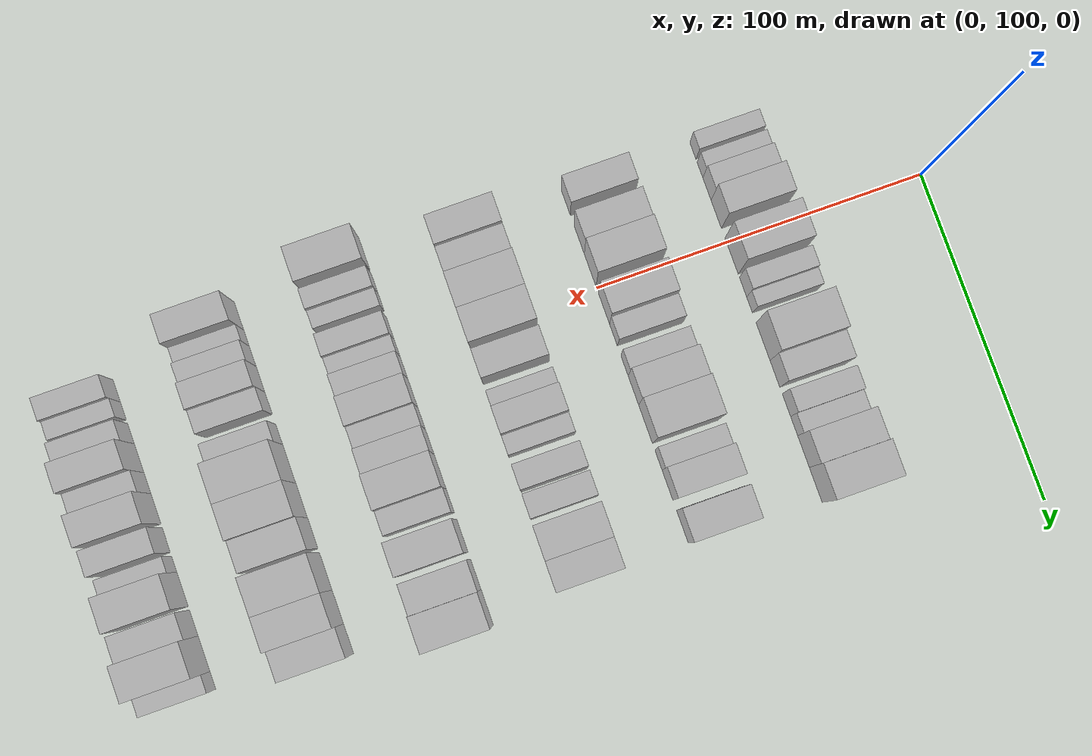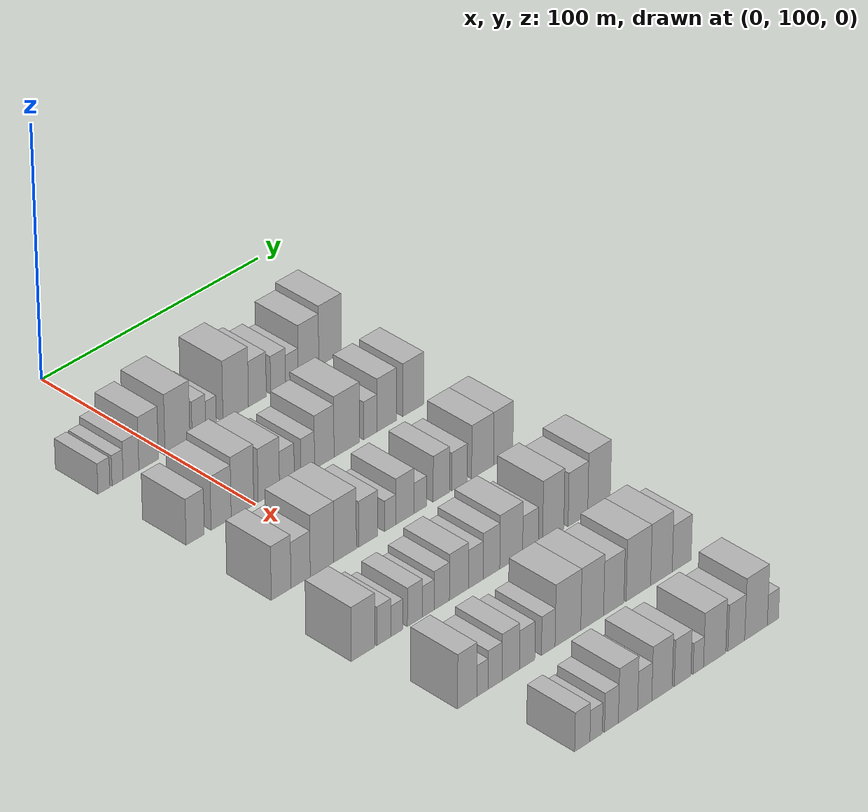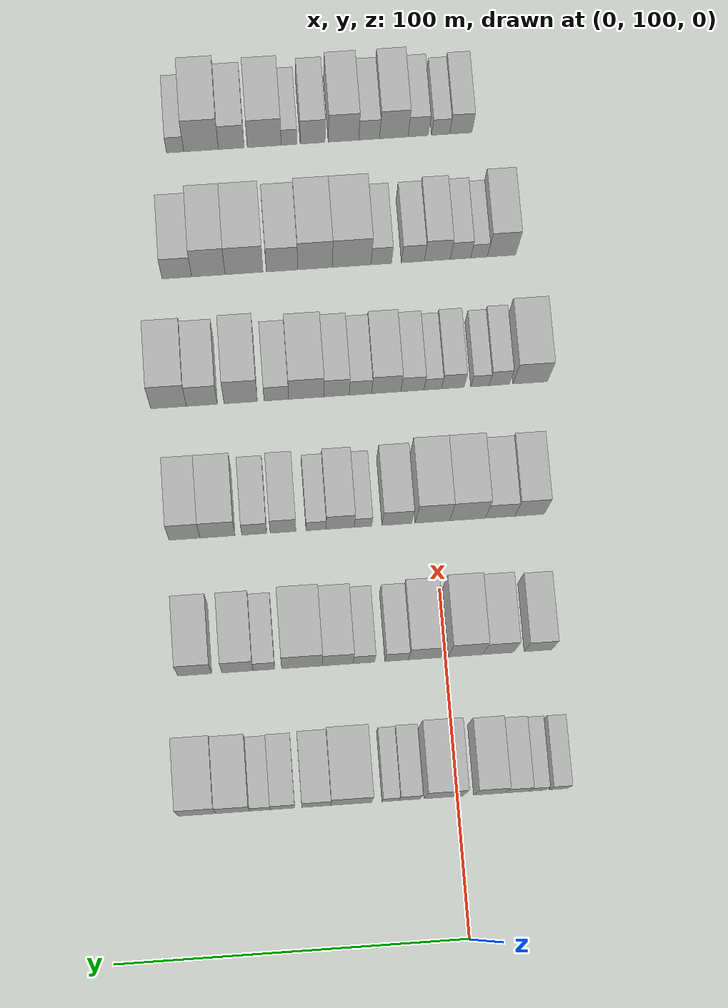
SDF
<sdf version="1.6">
 <world name="default">
  <model name="building_75">
   <static>1</static>
   <pose>50.0000 71.1874 0 0.000000 0.000000 0.000000</pose>
   <link name="link">
    <pose>0 0 6.00 0 0 0</pose>
    <collision name="collision"><geometry><box><size>20.0000 5.2787 12.0000</size></box></geometry></collision>
    <visual name="visual">
     <cast_shadows>0</cast_shadows>
     <geometry><box><size>20.0000 5.2787 12.0000</size></box></geometry>
     <material>
      <script>
       <uri>model://HANNAS_wall/materials/scripts</uri>
       <uri>model://HANNAS_wall/materials/textures</uri>
       <name>vrc/HANNAS_wall</name>
      </script>
     </material>
    </visual>
   </link>
  </model>
  <model name="building_76">
   <static>1</static>
   <pose>50.0000 77.2538 0 0.000000 0.000000 0.000000</pose>
   <link name="link">
    <pose>0 0 6.00 0 0 0</pose>
    <collision name="collision"><geometry><box><size>20.0000 4.8540 12.0000</size></box></geometry></collision>
    <visual name="visual">
     <cast_shadows>0</cast_shadows>
     <geometry><box><size>20.0000 4.8540 12.0000</size></box></geometry>
     <material>
      <script>
       <uri>model://HANNAS_wall/materials/scripts</uri>
       <uri>model://HANNAS_wall/materials/textures</uri>
       <name>vrc/HANNAS_wall</name>
      </script>
     </material>
    </visual>
   </link>
  </model>
  <model name="building_77">
   <static>1</static>
   <pose>50.0000 83.2019 0 0.000000 0.000000 0.000000</pose>
   <link name="link">
    <pose>0 0 7.50 0 0 0</pose>
    <collision name="collision"><geometry><box><size>20.0000 7.0421 15.0000</size></box></geometry></collision>
    <visual name="visual">
     <cast_shadows>0</cast_shadows>
     <geometry><box><size>20.0000 7.0421 15.0000</size></box></geometry>
     <material>
      <script>
       <uri>model://HANNAS_wall/materials/scripts</uri>
       <uri>model://HANNAS_wall/materials/textures</uri>
       <name>vrc/HANNAS_wall</name>
      </script>
     </material>
    </visual>
   </link>
  </model>
  <model name="building_78">
   <static>1</static>
   <pose>50.0000 91.0923 0 0.000000 0.000000 0.000000</pose>
   <link name="link">
    <pose>0 0 10.50 0 0 0</pose>
    <collision name="collision"><geometry><box><size>20.0000 8.7388 21.0000</size></box></geometry></collision>
    <visual name="visual">
     <cast_shadows>0</cast_shadows>
     <geometry><box><size>20.0000 8.7388 21.0000</size></box></geometry>
     <material>
      <script>
       <uri>model://HANNAS_wall/materials/scripts</uri>
       <uri>model://HANNAS_wall/materials/textures</uri>
       <name>vrc/HANNAS_wall</name>
      </script>
     </material>
    </visual>
   </link>
  </model>
  <model name="building_79">
   <static>1</static>
   <pose>50.0000 104.0641 0 0.000000 0.000000 0.000000</pose>
   <link name="link">
    <pose>0 0 12.00 0 0 0</pose>
    <collision name="collision"><geometry><box><size>20.0000 11.2049 24.0000</size></box></geometry></collision>
    <visual name="visual">
     <cast_shadows>0</cast_shadows>
     <geometry><box><size>20.0000 11.2049 24.0000</size></box></geometry>
     <material>
      <script>
       <uri>model://HANNAS_wall/materials/scripts</uri>
       <uri>model://HANNAS_wall/materials/textures</uri>
       <name>vrc/HANNAS_wall</name>
      </script>
     </material>
    </visual>
   </link>
  </model>
  <model name="building_80">
   <static>1</static>
   <pose>50.0000 113.7381 0 0.000000 0.000000 0.000000</pose>
   <link name="link">
    <pose>0 0 7.50 0 0 0</pose>
    <collision name="collision"><geometry><box><size>20.0000 6.1432 15.0000</size></box></geometry></collision>
    <visual name="visual">
     <cast_shadows>0</cast_shadows>
     <geometry><box><size>20.0000 6.1432 15.0000</size></box></geometry>
     <material>
      <script>
       <uri>model://HANNAS_wall/materials/scripts</uri>
       <uri>model://HANNAS_wall/materials/textures</uri>
       <name>vrc/HANNAS_wall</name>
      </script>
     </material>
    </visual>
   </link>
  </model>
  <model name="building_81">
   <static>1</static>
   <pose>50.0000 119.2396 0 0.000000 0.000000 0.000000</pose>
   <link name="link">
    <pose>0 0 6.00 0 0 0</pose>
    <collision name="collision"><geometry><box><size>20.0000 4.8598 12.0000</size></box></geometry></collision>
    <visual name="visual">
     <cast_shadows>0</cast_shadows>
     <geometry><box><size>20.0000 4.8598 12.0000</size></box></geometry>
     <material>
      <script>
       <uri>model://HANNAS_wall/materials/scripts</uri>
       <uri>model://HANNAS_wall/materials/textures</uri>
       <name>vrc/HANNAS_wall</name>
      </script>
     </material>
    </visual>
   </link>
  </model>
  <model name="building_82">
   <static>1</static>
   <pose>50.0000 130.5034 0 0.000000 0.000000 0.000000</pose>
   <link name="link">
    <pose>0 0 12.00 0 0 0</pose>
    <collision name="collision"><geometry><box><size>20.0000 11.6679 24.0000</size></box></geometry></collision>
    <visual name="visual">
     <cast_shadows>0</cast_shadows>
     <geometry><box><size>20.0000 11.6679 24.0000</size></box></geometry>
     <material>
      <script>
       <uri>model://HANNAS_wall/materials/scripts</uri>
       <uri>model://HANNAS_wall/materials/textures</uri>
       <name>vrc/HANNAS_wall</name>
      </script>
     </material>
    </visual>
   </link>
  </model>
  <model name="building_83">
   <static>1</static>
   <pose>50.0000 140.4385 0 0.000000 0.000000 0.000000</pose>
   <link name="link">
    <pose>0 0 9.00 0 0 0</pose>
    <collision name="collision"><geometry><box><size>20.0000 8.2021 18.0000</size></box></geometry></collision>
    <visual name="visual">
     <cast_shadows>0</cast_shadows>
     <geometry><box><size>20.0000 8.2021 18.0000</size></box></geometry>
     <material>
      <script>
       <uri>model://HANNAS_wall/materials/scripts</uri>
       <uri>model://HANNAS_wall/materials/textures</uri>
       <name>vrc/HANNAS_wall</name>
      </script>
     </material>
    </visual>
   </link>
  </model>
  <model name="building_84">
   <static>1</static>
   <pose>50.0000 150.0094 0 0.000000 0.000000 0.000000</pose>
   <link name="link">
    <pose>0 0 7.50 0 0 0</pose>
    <collision name="collision"><geometry><box><size>20.0000 6.9398 15.0000</size></box></geometry></collision>
    <visual name="visual">
     <cast_shadows>0</cast_shadows>
     <geometry><box><size>20.0000 6.9398 15.0000</size></box></geometry>
     <material>
      <script>
       <uri>model://HANNAS_wall/materials/scripts</uri>
       <uri>model://HANNAS_wall/materials/textures</uri>
       <name>vrc/HANNAS_wall</name>
      </script>
     </material>
    </visual>
   </link>
  </model>
  <model name="building_85">
   <static>1</static>
   <pose>50.0000 156.3979 0 0.000000 0.000000 0.000000</pose>
   <link name="link">
    <pose>0 0 6.00 0 0 0</pose>
    <collision name="collision"><geometry><box><size>20.0000 5.8374 12.0000</size></box></geometry></collision>
    <visual name="visual">
     <cast_shadows>0</cast_shadows>
     <geometry><box><size>20.0000 5.8374 12.0000</size></box></geometry>
     <material>
      <script>
       <uri>model://HANNAS_wall/materials/scripts</uri>
       <uri>model://HANNAS_wall/materials/textures</uri>
       <name>vrc/HANNAS_wall</name>
      </script>
     </material>
    </visual>
   </link>
  </model>
  <model name="building_86">
   <static>1</static>
   <pose>50.0000 164.1172 0 0.000000 0.000000 0.000000</pose>
   <link name="link">
    <pose>0 0 10.50 0 0 0</pose>
    <collision name="collision"><geometry><box><size>20.0000 9.6011 21.0000</size></box></geometry></collision>
    <visual name="visual">
     <cast_shadows>0</cast_shadows>
     <geometry><box><size>20.0000 9.6011 21.0000</size></box></geometry>
     <material>
      <script>
       <uri>model://HANNAS_wall/materials/scripts</uri>
       <uri>model://HANNAS_wall/materials/textures</uri>
       <name>vrc/HANNAS_wall</name>
      </script>
     </material>
    </visual>
   </link>
  </model>
  <model name="building_87">
   <static>1</static>
   <pose>50.0000 174.2276 0 0.000000 0.000000 0.000000</pose>
   <link name="link">
    <pose>0 0 12.00 0 0 0</pose>
    <collision name="collision"><geometry><box><size>20.0000 10.6198 24.0000</size></box></geometry></collision>
    <visual name="visual">
     <cast_shadows>0</cast_shadows>
     <geometry><box><size>20.0000 10.6198 24.0000</size></box></geometry>
     <material>
      <script>
       <uri>model://HANNAS_wall/materials/scripts</uri>
       <uri>model://HANNAS_wall/materials/textures</uri>
       <name>vrc/HANNAS_wall</name>
      </script>
     </material>
    </visual>
   </link>
  </model>
  <model name="building_208">
   <static>1</static>
   <pose>90.0000 73.2613 0 0.000000 0.000000 0.000000</pose>
   <link name="link">
    <pose>0 0 9.00 0 0 0</pose>
    <collision name="collision"><geometry><box><size>20.0000 8.0748 18.0000</size></box></geometry></collision>
    <visual name="visual">
     <cast_shadows>0</cast_shadows>
     <geometry><box><size>20.0000 8.0748 18.0000</size></box></geometry>
     <material>
      <script>
       <uri>model://HANNAS_wall/materials/scripts</uri>
       <uri>model://HANNAS_wall/materials/textures</uri>
       <name>vrc/HANNAS_wall</name>
      </script>
     </material>
    </visual>
   </link>
  </model>
  <model name="building_209">
   <static>1</static>
   <pose>90.0000 84.7780 0 0.000000 0.000000 0.000000</pose>
   <link name="link">
    <pose>0 0 10.50 0 0 0</pose>
    <collision name="collision"><geometry><box><size>20.0000 8.9586 21.0000</size></box></geometry></collision>
    <visual name="visual">
     <cast_shadows>0</cast_shadows>
     <geometry><box><size>20.0000 8.9586 21.0000</size></box></geometry>
     <material>
      <script>
       <uri>model://HANNAS_wall/materials/scripts</uri>
       <uri>model://HANNAS_wall/materials/textures</uri>
       <name>vrc/HANNAS_wall</name>
      </script>
     </material>
    </visual>
   </link>
  </model>
  <model name="building_210">
   <static>1</static>
   <pose>90.0000 94.3016 0 0.000000 0.000000 0.000000</pose>
   <link name="link">
    <pose>0 0 12.00 0 0 0</pose>
    <collision name="collision"><geometry><box><size>20.0000 10.0884 24.0000</size></box></geometry></collision>
    <visual name="visual">
     <cast_shadows>0</cast_shadows>
     <geometry><box><size>20.0000 10.0884 24.0000</size></box></geometry>
     <material>
      <script>
       <uri>model://HANNAS_wall/materials/scripts</uri>
       <uri>model://HANNAS_wall/materials/textures</uri>
       <name>vrc/HANNAS_wall</name>
      </script>
     </material>
    </visual>
   </link>
  </model>
  <model name="building_211">
   <static>1</static>
   <pose>90.0000 106.1566 0 0.000000 0.000000 0.000000</pose>
   <link name="link">
    <pose>0 0 10.50 0 0 0</pose>
    <collision name="collision"><geometry><box><size>20.0000 9.6216 21.0000</size></box></geometry></collision>
    <visual name="visual">
     <cast_shadows>0</cast_shadows>
     <geometry><box><size>20.0000 9.6216 21.0000</size></box></geometry>
     <material>
      <script>
       <uri>model://HANNAS_wall/materials/scripts</uri>
       <uri>model://HANNAS_wall/materials/textures</uri>
       <name>vrc/HANNAS_wall</name>
      </script>
     </material>
    </visual>
   </link>
  </model>
  <model name="building_212">
   <static>1</static>
   <pose>90.0000 114.3249 0 0.000000 0.000000 0.000000</pose>
   <link name="link">
    <pose>0 0 7.50 0 0 0</pose>
    <collision name="collision"><geometry><box><size>20.0000 6.7151 15.0000</size></box></geometry></collision>
    <visual name="visual">
     <cast_shadows>0</cast_shadows>
     <geometry><box><size>20.0000 6.7151 15.0000</size></box></geometry>
     <material>
      <script>
       <uri>model://HANNAS_wall/materials/scripts</uri>
       <uri>model://HANNAS_wall/materials/textures</uri>
       <name>vrc/HANNAS_wall</name>
      </script>
     </material>
    </visual>
   </link>
  </model>
  <model name="building_213">
   <static>1</static>
   <pose>90.0000 123.7985 0 0.000000 0.000000 0.000000</pose>
   <link name="link">
    <pose>0 0 7.50 0 0 0</pose>
    <collision name="collision"><geometry><box><size>20.0000 6.2322 15.0000</size></box></geometry></collision>
    <visual name="visual">
     <cast_shadows>0</cast_shadows>
     <geometry><box><size>20.0000 6.2322 15.0000</size></box></geometry>
     <material>
      <script>
       <uri>model://HANNAS_wall/materials/scripts</uri>
       <uri>model://HANNAS_wall/materials/textures</uri>
       <name>vrc/HANNAS_wall</name>
      </script>
     </material>
    </visual>
   </link>
  </model>
  <model name="building_214">
   <static>1</static>
   <pose>90.0000 131.3793 0 0.000000 0.000000 0.000000</pose>
   <link name="link">
    <pose>0 0 10.50 0 0 0</pose>
    <collision name="collision"><geometry><box><size>20.0000 8.9294 21.0000</size></box></geometry></collision>
    <visual name="visual">
     <cast_shadows>0</cast_shadows>
     <geometry><box><size>20.0000 8.9294 21.0000</size></box></geometry>
     <material>
      <script>
       <uri>model://HANNAS_wall/materials/scripts</uri>
       <uri>model://HANNAS_wall/materials/textures</uri>
       <name>vrc/HANNAS_wall</name>
      </script>
     </material>
    </visual>
   </link>
  </model>
  <model name="building_215">
   <static>1</static>
   <pose>90.0000 141.6913 0 0.000000 0.000000 0.000000</pose>
   <link name="link">
    <pose>0 0 12.00 0 0 0</pose>
    <collision name="collision"><geometry><box><size>20.0000 11.6946 24.0000</size></box></geometry></collision>
    <visual name="visual">
     <cast_shadows>0</cast_shadows>
     <geometry><box><size>20.0000 11.6946 24.0000</size></box></geometry>
     <material>
      <script>
       <uri>model://HANNAS_wall/materials/scripts</uri>
       <uri>model://HANNAS_wall/materials/textures</uri>
       <name>vrc/HANNAS_wall</name>
      </script>
     </material>
    </visual>
   </link>
  </model>
  <model name="building_216">
   <static>1</static>
   <pose>90.0000 152.6389 0 0.000000 0.000000 0.000000</pose>
   <link name="link">
    <pose>0 0 7.50 0 0 0</pose>
    <collision name="collision"><geometry><box><size>20.0000 6.2006 15.0000</size></box></geometry></collision>
    <visual name="visual">
     <cast_shadows>0</cast_shadows>
     <geometry><box><size>20.0000 6.2006 15.0000</size></box></geometry>
     <material>
      <script>
       <uri>model://HANNAS_wall/materials/scripts</uri>
       <uri>model://HANNAS_wall/materials/textures</uri>
       <name>vrc/HANNAS_wall</name>
      </script>
     </material>
    </visual>
   </link>
  </model>
  <model name="building_217">
   <static>1</static>
   <pose>90.0000 160.2512 0 0.000000 0.000000 0.000000</pose>
   <link name="link">
    <pose>0 0 10.50 0 0 0</pose>
    <collision name="collision"><geometry><box><size>20.0000 9.0239 21.0000</size></box></geometry></collision>
    <visual name="visual">
     <cast_shadows>0</cast_shadows>
     <geometry><box><size>20.0000 9.0239 21.0000</size></box></geometry>
     <material>
      <script>
       <uri>model://HANNAS_wall/materials/scripts</uri>
       <uri>model://HANNAS_wall/materials/textures</uri>
       <name>vrc/HANNAS_wall</name>
      </script>
     </material>
    </visual>
   </link>
  </model>
  <model name="building_218">
   <static>1</static>
   <pose>90.0000 172.6501 0 0.000000 0.000000 0.000000</pose>
   <link name="link">
    <pose>0 0 10.50 0 0 0</pose>
    <collision name="collision"><geometry><box><size>20.0000 9.7741 21.0000</size></box></geometry></collision>
    <visual name="visual">
     <cast_shadows>0</cast_shadows>
     <geometry><box><size>20.0000 9.7741 21.0000</size></box></geometry>
     <material>
      <script>
       <uri>model://HANNAS_wall/materials/scripts</uri>
       <uri>model://HANNAS_wall/materials/textures</uri>
       <name>vrc/HANNAS_wall</name>
      </script>
     </material>
    </visual>
   </link>
  </model>
  <model name="building_341">
   <static>1</static>
   <pose>130.0000 72.0234 0 0.000000 0.000000 0.000000</pose>
   <link name="link">
    <pose>0 0 10.50 0 0 0</pose>
    <collision name="collision"><geometry><box><size>20.0000 8.6861 21.0000</size></box></geometry></collision>
    <visual name="visual">
     <cast_shadows>0</cast_shadows>
     <geometry><box><size>20.0000 8.6861 21.0000</size></box></geometry>
     <material>
      <script>
       <uri>model://HANNAS_wall/materials/scripts</uri>
       <uri>model://HANNAS_wall/materials/textures</uri>
       <name>vrc/HANNAS_wall</name>
      </script>
     </material>
    </visual>
   </link>
  </model>
  <model name="building_342">
   <static>1</static>
   <pose>130.0000 80.6614 0 0.000000 0.000000 0.000000</pose>
   <link name="link">
    <pose>0 0 9.00 0 0 0</pose>
    <collision name="collision"><geometry><box><size>20.0000 8.5899 18.0000</size></box></geometry></collision>
    <visual name="visual">
     <cast_shadows>0</cast_shadows>
     <geometry><box><size>20.0000 8.5899 18.0000</size></box></geometry>
     <material>
      <script>
       <uri>model://HANNAS_wall/materials/scripts</uri>
       <uri>model://HANNAS_wall/materials/textures</uri>
       <name>vrc/HANNAS_wall</name>
      </script>
     </material>
    </visual>
   </link>
  </model>
  <model name="building_343">
   <static>1</static>
   <pose>130.0000 90.2281 0 0.000000 0.000000 0.000000</pose>
   <link name="link">
    <pose>0 0 12.00 0 0 0</pose>
    <collision name="collision"><geometry><box><size>20.0000 10.5435 24.0000</size></box></geometry></collision>
    <visual name="visual">
     <cast_shadows>0</cast_shadows>
     <geometry><box><size>20.0000 10.5435 24.0000</size></box></geometry>
     <material>
      <script>
       <uri>model://HANNAS_wall/materials/scripts</uri>
       <uri>model://HANNAS_wall/materials/textures</uri>
       <name>vrc/HANNAS_wall</name>
      </script>
     </material>
    </visual>
   </link>
  </model>
  <model name="building_344">
   <static>1</static>
   <pose>130.0000 100.5776 0 0.000000 0.000000 0.000000</pose>
   <link name="link">
    <pose>0 0 12.00 0 0 0</pose>
    <collision name="collision"><geometry><box><size>20.0000 10.1554 24.0000</size></box></geometry></collision>
    <visual name="visual">
     <cast_shadows>0</cast_shadows>
     <geometry><box><size>20.0000 10.1554 24.0000</size></box></geometry>
     <material>
      <script>
       <uri>model://HANNAS_wall/materials/scripts</uri>
       <uri>model://HANNAS_wall/materials/textures</uri>
       <name>vrc/HANNAS_wall</name>
      </script>
     </material>
    </visual>
   </link>
  </model>
  <model name="building_345">
   <static>1</static>
   <pose>130.0000 111.0326 0 0.000000 0.000000 0.000000</pose>
   <link name="link">
    <pose>0 0 9.00 0 0 0</pose>
    <collision name="collision"><geometry><box><size>20.0000 8.7546 18.0000</size></box></geometry></collision>
    <visual name="visual">
     <cast_shadows>0</cast_shadows>
     <geometry><box><size>20.0000 8.7546 18.0000</size></box></geometry>
     <material>
      <script>
       <uri>model://HANNAS_wall/materials/scripts</uri>
       <uri>model://HANNAS_wall/materials/textures</uri>
       <name>vrc/HANNAS_wall</name>
      </script>
     </material>
    </visual>
   </link>
  </model>
  <model name="building_346">
   <static>1</static>
   <pose>130.0000 120.9699 0 0.000000 0.000000 0.000000</pose>
   <link name="link">
    <pose>0 0 6.00 0 0 0</pose>
    <collision name="collision"><geometry><box><size>20.0000 5.1201 12.0000</size></box></geometry></collision>
    <visual name="visual">
     <cast_shadows>0</cast_shadows>
     <geometry><box><size>20.0000 5.1201 12.0000</size></box></geometry>
     <material>
      <script>
       <uri>model://HANNAS_wall/materials/scripts</uri>
       <uri>model://HANNAS_wall/materials/textures</uri>
       <name>vrc/HANNAS_wall</name>
      </script>
     </material>
    </visual>
   </link>
  </model>
  <model name="building_347">
   <static>1</static>
   <pose>130.0000 127.6741 0 0.000000 0.000000 0.000000</pose>
   <link name="link">
    <pose>0 0 9.00 0 0 0</pose>
    <collision name="collision"><geometry><box><size>20.0000 8.2883 18.0000</size></box></geometry></collision>
    <visual name="visual">
     <cast_shadows>0</cast_shadows>
     <geometry><box><size>20.0000 8.2883 18.0000</size></box></geometry>
     <material>
      <script>
       <uri>model://HANNAS_wall/materials/scripts</uri>
       <uri>model://HANNAS_wall/materials/textures</uri>
       <name>vrc/HANNAS_wall</name>
      </script>
     </material>
    </visual>
   </link>
  </model>
  <model name="building_348">
   <static>1</static>
   <pose>130.0000 134.7477 0 0.000000 0.000000 0.000000</pose>
   <link name="link">
    <pose>0 0 6.00 0 0 0</pose>
    <collision name="collision"><geometry><box><size>20.0000 5.8589 12.0000</size></box></geometry></collision>
    <visual name="visual">
     <cast_shadows>0</cast_shadows>
     <geometry><box><size>20.0000 5.8589 12.0000</size></box></geometry>
     <material>
      <script>
       <uri>model://HANNAS_wall/materials/scripts</uri>
       <uri>model://HANNAS_wall/materials/textures</uri>
       <name>vrc/HANNAS_wall</name>
      </script>
     </material>
    </visual>
   </link>
  </model>
  <model name="building_349">
   <static>1</static>
   <pose>130.0000 144.4356 0 0.000000 0.000000 0.000000</pose>
   <link name="link">
    <pose>0 0 9.00 0 0 0</pose>
    <collision name="collision"><geometry><box><size>20.0000 7.5170 18.0000</size></box></geometry></collision>
    <visual name="visual">
     <cast_shadows>0</cast_shadows>
     <geometry><box><size>20.0000 7.5170 18.0000</size></box></geometry>
     <material>
      <script>
       <uri>model://HANNAS_wall/materials/scripts</uri>
       <uri>model://HANNAS_wall/materials/textures</uri>
       <name>vrc/HANNAS_wall</name>
      </script>
     </material>
    </visual>
   </link>
  </model>
  <model name="building_350">
   <static>1</static>
   <pose>130.0000 152.8424 0 0.000000 0.000000 0.000000</pose>
   <link name="link">
    <pose>0 0 7.50 0 0 0</pose>
    <collision name="collision"><geometry><box><size>20.0000 7.2965 15.0000</size></box></geometry></collision>
    <visual name="visual">
     <cast_shadows>0</cast_shadows>
     <geometry><box><size>20.0000 7.2965 15.0000</size></box></geometry>
     <material>
      <script>
       <uri>model://HANNAS_wall/materials/scripts</uri>
       <uri>model://HANNAS_wall/materials/textures</uri>
       <name>vrc/HANNAS_wall</name>
      </script>
     </material>
    </visual>
   </link>
  </model>
  <model name="building_351">
   <static>1</static>
   <pose>130.0000 163.6110 0 0.000000 0.000000 0.000000</pose>
   <link name="link">
    <pose>0 0 10.50 0 0 0</pose>
    <collision name="collision"><geometry><box><size>20.0000 10.2406 21.0000</size></box></geometry></collision>
    <visual name="visual">
     <cast_shadows>0</cast_shadows>
     <geometry><box><size>20.0000 10.2406 21.0000</size></box></geometry>
     <material>
      <script>
       <uri>model://HANNAS_wall/materials/scripts</uri>
       <uri>model://HANNAS_wall/materials/textures</uri>
       <name>vrc/HANNAS_wall</name>
      </script>
     </material>
    </visual>
   </link>
  </model>
  <model name="building_352">
   <static>1</static>
   <pose>130.0000 173.2624 0 0.000000 0.000000 0.000000</pose>
   <link name="link">
    <pose>0 0 10.50 0 0 0</pose>
    <collision name="collision"><geometry><box><size>20.0000 9.0622 21.0000</size></box></geometry></collision>
    <visual name="visual">
     <cast_shadows>0</cast_shadows>
     <geometry><box><size>20.0000 9.0622 21.0000</size></box></geometry>
     <material>
      <script>
       <uri>model://HANNAS_wall/materials/scripts</uri>
       <uri>model://HANNAS_wall/materials/textures</uri>
       <name>vrc/HANNAS_wall</name>
      </script>
     </material>
    </visual>
   </link>
  </model>
  <model name="building_481">
   <static>1</static>
   <pose>170.0000 68.1034 0 0.000000 0.000000 0.000000</pose>
   <link name="link">
    <pose>0 0 10.50 0 0 0</pose>
    <collision name="collision"><geometry><box><size>20.0000 10.3189 21.0000</size></box></geometry></collision>
    <visual name="visual">
     <cast_shadows>0</cast_shadows>
     <geometry><box><size>20.0000 10.3189 21.0000</size></box></geometry>
     <material>
      <script>
       <uri>model://HANNAS_wall/materials/scripts</uri>
       <uri>model://HANNAS_wall/materials/textures</uri>
       <name>vrc/HANNAS_wall</name>
      </script>
     </material>
    </visual>
   </link>
  </model>
  <model name="building_482">
   <static>1</static>
   <pose>170.0000 77.3258 0 0.000000 0.000000 0.000000</pose>
   <link name="link">
    <pose>0 0 7.50 0 0 0</pose>
    <collision name="collision"><geometry><box><size>20.0000 6.1260 15.0000</size></box></geometry></collision>
    <visual name="visual">
     <cast_shadows>0</cast_shadows>
     <geometry><box><size>20.0000 6.1260 15.0000</size></box></geometry>
     <material>
      <script>
       <uri>model://HANNAS_wall/materials/scripts</uri>
       <uri>model://HANNAS_wall/materials/textures</uri>
       <name>vrc/HANNAS_wall</name>
      </script>
     </material>
    </visual>
   </link>
  </model>
  <model name="building_483">
   <static>1</static>
   <pose>170.0000 83.0961 0 0.000000 0.000000 0.000000</pose>
   <link name="link">
    <pose>0 0 6.00 0 0 0</pose>
    <collision name="collision"><geometry><box><size>20.0000 5.4145 12.0000</size></box></geometry></collision>
    <visual name="visual">
     <cast_shadows>0</cast_shadows>
     <geometry><box><size>20.0000 5.4145 12.0000</size></box></geometry>
     <material>
      <script>
       <uri>model://HANNAS_wall/materials/scripts</uri>
       <uri>model://HANNAS_wall/materials/textures</uri>
       <name>vrc/HANNAS_wall</name>
      </script>
     </material>
    </visual>
   </link>
  </model>
  <model name="building_484">
   <static>1</static>
   <pose>170.0000 91.1701 0 0.000000 0.000000 0.000000</pose>
   <link name="link">
    <pose>0 0 7.50 0 0 0</pose>
    <collision name="collision"><geometry><box><size>20.0000 6.7336 15.0000</size></box></geometry></collision>
    <visual name="visual">
     <cast_shadows>0</cast_shadows>
     <geometry><box><size>20.0000 6.7336 15.0000</size></box></geometry>
     <material>
      <script>
       <uri>model://HANNAS_wall/materials/scripts</uri>
       <uri>model://HANNAS_wall/materials/textures</uri>
       <name>vrc/HANNAS_wall</name>
      </script>
     </material>
    </visual>
   </link>
  </model>
  <model name="building_485">
   <static>1</static>
   <pose>170.0000 97.1598 0 0.000000 0.000000 0.000000</pose>
   <link name="link">
    <pose>0 0 6.00 0 0 0</pose>
    <collision name="collision"><geometry><box><size>20.0000 5.2458 12.0000</size></box></geometry></collision>
    <visual name="visual">
     <cast_shadows>0</cast_shadows>
     <geometry><box><size>20.0000 5.2458 12.0000</size></box></geometry>
     <material>
      <script>
       <uri>model://HANNAS_wall/materials/scripts</uri>
       <uri>model://HANNAS_wall/materials/textures</uri>
       <name>vrc/HANNAS_wall</name>
      </script>
     </material>
    </visual>
   </link>
  </model>
  <model name="building_486">
   <static>1</static>
   <pose>170.0000 103.2279 0 0.000000 0.000000 0.000000</pose>
   <link name="link">
    <pose>0 0 7.50 0 0 0</pose>
    <collision name="collision"><geometry><box><size>20.0000 6.8904 15.0000</size></box></geometry></collision>
    <visual name="visual">
     <cast_shadows>0</cast_shadows>
     <geometry><box><size>20.0000 6.8904 15.0000</size></box></geometry>
     <material>
      <script>
       <uri>model://HANNAS_wall/materials/scripts</uri>
       <uri>model://HANNAS_wall/materials/textures</uri>
       <name>vrc/HANNAS_wall</name>
      </script>
     </material>
    </visual>
   </link>
  </model>
  <model name="building_487">
   <static>1</static>
   <pose>170.0000 111.0293 0 0.000000 0.000000 0.000000</pose>
   <link name="link">
    <pose>0 0 9.00 0 0 0</pose>
    <collision name="collision"><geometry><box><size>20.0000 8.7124 18.0000</size></box></geometry></collision>
    <visual name="visual">
     <cast_shadows>0</cast_shadows>
     <geometry><box><size>20.0000 8.7124 18.0000</size></box></geometry>
     <material>
      <script>
       <uri>model://HANNAS_wall/materials/scripts</uri>
       <uri>model://HANNAS_wall/materials/textures</uri>
       <name>vrc/HANNAS_wall</name>
      </script>
     </material>
    </visual>
   </link>
  </model>
  <model name="building_488">
   <static>1</static>
   <pose>170.0000 118.7109 0 0.000000 0.000000 0.000000</pose>
   <link name="link">
    <pose>0 0 7.50 0 0 0</pose>
    <collision name="collision"><geometry><box><size>20.0000 6.6507 15.0000</size></box></geometry></collision>
    <visual name="visual">
     <cast_shadows>0</cast_shadows>
     <geometry><box><size>20.0000 6.6507 15.0000</size></box></geometry>
     <material>
      <script>
       <uri>model://HANNAS_wall/materials/scripts</uri>
       <uri>model://HANNAS_wall/materials/textures</uri>
       <name>vrc/HANNAS_wall</name>
      </script>
     </material>
    </visual>
   </link>
  </model>
  <model name="building_489">
   <static>1</static>
   <pose>170.0000 125.8179 0 0.000000 0.000000 0.000000</pose>
   <link name="link">
    <pose>0 0 9.00 0 0 0</pose>
    <collision name="collision"><geometry><box><size>20.0000 7.5633 18.0000</size></box></geometry></collision>
    <visual name="visual">
     <cast_shadows>0</cast_shadows>
     <geometry><box><size>20.0000 7.5633 18.0000</size></box></geometry>
     <material>
      <script>
       <uri>model://HANNAS_wall/materials/scripts</uri>
       <uri>model://HANNAS_wall/materials/textures</uri>
       <name>vrc/HANNAS_wall</name>
      </script>
     </material>
    </visual>
   </link>
  </model>
  <model name="building_490">
   <static>1</static>
   <pose>170.0000 134.8437 0 0.000000 0.000000 0.000000</pose>
   <link name="link">
    <pose>0 0 10.50 0 0 0</pose>
    <collision name="collision"><geometry><box><size>20.0000 10.4883 21.0000</size></box></geometry></collision>
    <visual name="visual">
     <cast_shadows>0</cast_shadows>
     <geometry><box><size>20.0000 10.4883 21.0000</size></box></geometry>
     <material>
      <script>
       <uri>model://HANNAS_wall/materials/scripts</uri>
       <uri>model://HANNAS_wall/materials/textures</uri>
       <name>vrc/HANNAS_wall</name>
      </script>
     </material>
    </visual>
   </link>
  </model>
  <model name="building_491">
   <static>1</static>
   <pose>170.0000 143.7097 0 0.000000 0.000000 0.000000</pose>
   <link name="link">
    <pose>0 0 7.50 0 0 0</pose>
    <collision name="collision"><geometry><box><size>20.0000 7.2438 15.0000</size></box></geometry></collision>
    <visual name="visual">
     <cast_shadows>0</cast_shadows>
     <geometry><box><size>20.0000 7.2438 15.0000</size></box></geometry>
     <material>
      <script>
       <uri>model://HANNAS_wall/materials/scripts</uri>
       <uri>model://HANNAS_wall/materials/textures</uri>
       <name>vrc/HANNAS_wall</name>
      </script>
     </material>
    </visual>
   </link>
  </model>
  <model name="building_492">
   <static>1</static>
   <pose>170.0000 154.2715 0 0.000000 0.000000 0.000000</pose>
   <link name="link">
    <pose>0 0 12.00 0 0 0</pose>
    <collision name="collision"><geometry><box><size>20.0000 9.8797 24.0000</size></box></geometry></collision>
    <visual name="visual">
     <cast_shadows>0</cast_shadows>
     <geometry><box><size>20.0000 9.8797 24.0000</size></box></geometry>
     <material>
      <script>
       <uri>model://HANNAS_wall/materials/scripts</uri>
       <uri>model://HANNAS_wall/materials/textures</uri>
       <name>vrc/HANNAS_wall</name>
      </script>
     </material>
    </visual>
   </link>
  </model>
  <model name="building_493">
   <static>1</static>
   <pose>170.0000 165.7961 0 0.000000 0.000000 0.000000</pose>
   <link name="link">
    <pose>0 0 10.50 0 0 0</pose>
    <collision name="collision"><geometry><box><size>20.0000 9.1695 21.0000</size></box></geometry></collision>
    <visual name="visual">
     <cast_shadows>0</cast_shadows>
     <geometry><box><size>20.0000 9.1695 21.0000</size></box></geometry>
     <material>
      <script>
       <uri>model://HANNAS_wall/materials/scripts</uri>
       <uri>model://HANNAS_wall/materials/textures</uri>
       <name>vrc/HANNAS_wall</name>
      </script>
     </material>
    </visual>
   </link>
  </model>
  <model name="building_494">
   <static>1</static>
   <pose>170.0000 175.6798 0 0.000000 0.000000 0.000000</pose>
   <link name="link">
    <pose>0 0 12.00 0 0 0</pose>
    <collision name="collision"><geometry><box><size>20.0000 10.5977 24.0000</size></box></geometry></collision>
    <visual name="visual">
     <cast_shadows>0</cast_shadows>
     <geometry><box><size>20.0000 10.5977 24.0000</size></box></geometry>
     <material>
      <script>
       <uri>model://HANNAS_wall/materials/scripts</uri>
       <uri>model://HANNAS_wall/materials/textures</uri>
       <name>vrc/HANNAS_wall</name>
      </script>
     </material>
    </visual>
   </link>
  </model>
  <model name="building_622">
   <static>1</static>
   <pose>210.0000 73.0414 0 0.000000 0.000000 0.000000</pose>
   <link name="link">
    <pose>0 0 10.50 0 0 0</pose>
    <collision name="collision"><geometry><box><size>20.0000 8.5713 21.0000</size></box></geometry></collision>
    <visual name="visual">
     <cast_shadows>0</cast_shadows>
     <geometry><box><size>20.0000 8.5713 21.0000</size></box></geometry>
     <material>
      <script>
       <uri>model://HANNAS_wall/materials/scripts</uri>
       <uri>model://HANNAS_wall/materials/textures</uri>
       <name>vrc/HANNAS_wall</name>
      </script>
     </material>
    </visual>
   </link>
  </model>
  <model name="building_623">
   <static>1</static>
   <pose>210.0000 79.8244 0 0.000000 0.000000 0.000000</pose>
   <link name="link">
    <pose>0 0 6.00 0 0 0</pose>
    <collision name="collision"><geometry><box><size>20.0000 4.9947 12.0000</size></box></geometry></collision>
    <visual name="visual">
     <cast_shadows>0</cast_shadows>
     <geometry><box><size>20.0000 4.9947 12.0000</size></box></geometry>
     <material>
      <script>
       <uri>model://HANNAS_wall/materials/scripts</uri>
       <uri>model://HANNAS_wall/materials/textures</uri>
       <name>vrc/HANNAS_wall</name>
      </script>
     </material>
    </visual>
   </link>
  </model>
  <model name="building_624">
   <static>1</static>
   <pose>210.0000 85.4282 0 0.000000 0.000000 0.000000</pose>
   <link name="link">
    <pose>0 0 7.50 0 0 0</pose>
    <collision name="collision"><geometry><box><size>20.0000 6.2129 15.0000</size></box></geometry></collision>
    <visual name="visual">
     <cast_shadows>0</cast_shadows>
     <geometry><box><size>20.0000 6.2129 15.0000</size></box></geometry>
     <material>
      <script>
       <uri>model://HANNAS_wall/materials/scripts</uri>
       <uri>model://HANNAS_wall/materials/textures</uri>
       <name>vrc/HANNAS_wall</name>
      </script>
     </material>
    </visual>
   </link>
  </model>
  <model name="building_625">
   <static>1</static>
   <pose>210.0000 92.4423 0 0.000000 0.000000 0.000000</pose>
   <link name="link">
    <pose>0 0 9.00 0 0 0</pose>
    <collision name="collision"><geometry><box><size>20.0000 7.8153 18.0000</size></box></geometry></collision>
    <visual name="visual">
     <cast_shadows>0</cast_shadows>
     <geometry><box><size>20.0000 7.8153 18.0000</size></box></geometry>
     <material>
      <script>
       <uri>model://HANNAS_wall/materials/scripts</uri>
       <uri>model://HANNAS_wall/materials/textures</uri>
       <name>vrc/HANNAS_wall</name>
      </script>
     </material>
    </visual>
   </link>
  </model>
  <model name="building_626">
   <static>1</static>
   <pose>210.0000 99.8137 0 0.000000 0.000000 0.000000</pose>
   <link name="link">
    <pose>0 0 7.50 0 0 0</pose>
    <collision name="collision"><geometry><box><size>20.0000 6.9275 15.0000</size></box></geometry></collision>
    <visual name="visual">
     <cast_shadows>0</cast_shadows>
     <geometry><box><size>20.0000 6.9275 15.0000</size></box></geometry>
     <material>
      <script>
       <uri>model://HANNAS_wall/materials/scripts</uri>
       <uri>model://HANNAS_wall/materials/textures</uri>
       <name>vrc/HANNAS_wall</name>
      </script>
     </material>
    </visual>
   </link>
  </model>
  <model name="building_627">
   <static>1</static>
   <pose>210.0000 109.3612 0 0.000000 0.000000 0.000000</pose>
   <link name="link">
    <pose>0 0 7.50 0 0 0</pose>
    <collision name="collision"><geometry><box><size>20.0000 6.1676 15.0000</size></box></geometry></collision>
    <visual name="visual">
     <cast_shadows>0</cast_shadows>
     <geometry><box><size>20.0000 6.1676 15.0000</size></box></geometry>
     <material>
      <script>
       <uri>model://HANNAS_wall/materials/scripts</uri>
       <uri>model://HANNAS_wall/materials/textures</uri>
       <name>vrc/HANNAS_wall</name>
      </script>
     </material>
    </visual>
   </link>
  </model>
  <model name="building_628">
   <static>1</static>
   <pose>210.0000 118.2987 0 0.000000 0.000000 0.000000</pose>
   <link name="link">
    <pose>0 0 12.00 0 0 0</pose>
    <collision name="collision"><geometry><box><size>20.0000 11.7073 24.0000</size></box></geometry></collision>
    <visual name="visual">
     <cast_shadows>0</cast_shadows>
     <geometry><box><size>20.0000 11.7073 24.0000</size></box></geometry>
     <material>
      <script>
       <uri>model://HANNAS_wall/materials/scripts</uri>
       <uri>model://HANNAS_wall/materials/textures</uri>
       <name>vrc/HANNAS_wall</name>
      </script>
     </material>
    </visual>
   </link>
  </model>
  <model name="building_629">
   <static>1</static>
   <pose>210.0000 129.3878 0 0.000000 0.000000 0.000000</pose>
   <link name="link">
    <pose>0 0 12.00 0 0 0</pose>
    <collision name="collision"><geometry><box><size>20.0000 10.4708 24.0000</size></box></geometry></collision>
    <visual name="visual">
     <cast_shadows>0</cast_shadows>
     <geometry><box><size>20.0000 10.4708 24.0000</size></box></geometry>
     <material>
      <script>
       <uri>model://HANNAS_wall/materials/scripts</uri>
       <uri>model://HANNAS_wall/materials/textures</uri>
       <name>vrc/HANNAS_wall</name>
      </script>
     </material>
    </visual>
   </link>
  </model>
  <model name="building_630">
   <static>1</static>
   <pose>210.0000 139.3262 0 0.000000 0.000000 0.000000</pose>
   <link name="link">
    <pose>0 0 10.50 0 0 0</pose>
    <collision name="collision"><geometry><box><size>20.0000 9.4060 21.0000</size></box></geometry></collision>
    <visual name="visual">
     <cast_shadows>0</cast_shadows>
     <geometry><box><size>20.0000 9.4060 21.0000</size></box></geometry>
     <material>
      <script>
       <uri>model://HANNAS_wall/materials/scripts</uri>
       <uri>model://HANNAS_wall/materials/textures</uri>
       <name>vrc/HANNAS_wall</name>
      </script>
     </material>
    </visual>
   </link>
  </model>
  <model name="building_631">
   <static>1</static>
   <pose>210.0000 150.7126 0 0.000000 0.000000 0.000000</pose>
   <link name="link">
    <pose>0 0 12.00 0 0 0</pose>
    <collision name="collision"><geometry><box><size>20.0000 11.3670 24.0000</size></box></geometry></collision>
    <visual name="visual">
     <cast_shadows>0</cast_shadows>
     <geometry><box><size>20.0000 11.3670 24.0000</size></box></geometry>
     <material>
      <script>
       <uri>model://HANNAS_wall/materials/scripts</uri>
       <uri>model://HANNAS_wall/materials/textures</uri>
       <name>vrc/HANNAS_wall</name>
      </script>
     </material>
    </visual>
   </link>
  </model>
  <model name="building_632">
   <static>1</static>
   <pose>210.0000 161.4435 0 0.000000 0.000000 0.000000</pose>
   <link name="link">
    <pose>0 0 12.00 0 0 0</pose>
    <collision name="collision"><geometry><box><size>20.0000 10.0948 24.0000</size></box></geometry></collision>
    <visual name="visual">
     <cast_shadows>0</cast_shadows>
     <geometry><box><size>20.0000 10.0948 24.0000</size></box></geometry>
     <material>
      <script>
       <uri>model://HANNAS_wall/materials/scripts</uri>
       <uri>model://HANNAS_wall/materials/textures</uri>
       <name>vrc/HANNAS_wall</name>
      </script>
     </material>
    </visual>
   </link>
  </model>
  <model name="building_633">
   <static>1</static>
   <pose>210.0000 170.9398 0 0.000000 0.000000 0.000000</pose>
   <link name="link">
    <pose>0 0 9.00 0 0 0</pose>
    <collision name="collision"><geometry><box><size>20.0000 8.8979 18.0000</size></box></geometry></collision>
    <visual name="visual">
     <cast_shadows>0</cast_shadows>
     <geometry><box><size>20.0000 8.8979 18.0000</size></box></geometry>
     <material>
      <script>
       <uri>model://HANNAS_wall/materials/scripts</uri>
       <uri>model://HANNAS_wall/materials/textures</uri>
       <name>vrc/HANNAS_wall</name>
      </script>
     </material>
    </visual>
   </link>
  </model>
  <model name="building_754">
   <static>1</static>
   <pose>250.0000 81.8820 0 0.000000 0.000000 0.000000</pose>
   <link name="link">
    <pose>0 0 7.50 0 0 0</pose>
    <collision name="collision"><geometry><box><size>20.0000 6.7959 15.0000</size></box></geometry></collision>
    <visual name="visual">
     <cast_shadows>0</cast_shadows>
     <geometry><box><size>20.0000 6.7959 15.0000</size></box></geometry>
     <material>
      <script>
       <uri>model://HANNAS_wall/materials/scripts</uri>
       <uri>model://HANNAS_wall/materials/textures</uri>
       <name>vrc/HANNAS_wall</name>
      </script>
     </material>
    </visual>
   </link>
  </model>
  <model name="building_755">
   <static>1</static>
   <pose>250.0000 88.0537 0 0.000000 0.000000 0.000000</pose>
   <link name="link">
    <pose>0 0 6.00 0 0 0</pose>
    <collision name="collision"><geometry><box><size>20.0000 5.5476 12.0000</size></box></geometry></collision>
    <visual name="visual">
     <cast_shadows>0</cast_shadows>
     <geometry><box><size>20.0000 5.5476 12.0000</size></box></geometry>
     <material>
      <script>
       <uri>model://HANNAS_wall/materials/scripts</uri>
       <uri>model://HANNAS_wall/materials/textures</uri>
       <name>vrc/HANNAS_wall</name>
      </script>
     </material>
    </visual>
   </link>
  </model>
  <model name="building_756">
   <static>1</static>
   <pose>250.0000 94.9324 0 0.000000 0.000000 0.000000</pose>
   <link name="link">
    <pose>0 0 7.50 0 0 0</pose>
    <collision name="collision"><geometry><box><size>20.0000 6.2098 15.0000</size></box></geometry></collision>
    <visual name="visual">
     <cast_shadows>0</cast_shadows>
     <geometry><box><size>20.0000 6.2098 15.0000</size></box></geometry>
     <material>
      <script>
       <uri>model://HANNAS_wall/materials/scripts</uri>
       <uri>model://HANNAS_wall/materials/textures</uri>
       <name>vrc/HANNAS_wall</name>
      </script>
     </material>
    </visual>
   </link>
  </model>
  <model name="building_757">
   <static>1</static>
   <pose>250.0000 102.4004 0 0.000000 0.000000 0.000000</pose>
   <link name="link">
    <pose>0 0 10.50 0 0 0</pose>
    <collision name="collision"><geometry><box><size>20.0000 8.7262 21.0000</size></box></geometry></collision>
    <visual name="visual">
     <cast_shadows>0</cast_shadows>
     <geometry><box><size>20.0000 8.7262 21.0000</size></box></geometry>
     <material>
      <script>
       <uri>model://HANNAS_wall/materials/scripts</uri>
       <uri>model://HANNAS_wall/materials/textures</uri>
       <name>vrc/HANNAS_wall</name>
      </script>
     </material>
    </visual>
   </link>
  </model>
  <model name="building_758">
   <static>1</static>
   <pose>250.0000 109.9568 0 0.000000 0.000000 0.000000</pose>
   <link name="link">
    <pose>0 0 7.50 0 0 0</pose>
    <collision name="collision"><geometry><box><size>20.0000 6.3866 15.0000</size></box></geometry></collision>
    <visual name="visual">
     <cast_shadows>0</cast_shadows>
     <geometry><box><size>20.0000 6.3866 15.0000</size></box></geometry>
     <material>
      <script>
       <uri>model://HANNAS_wall/materials/scripts</uri>
       <uri>model://HANNAS_wall/materials/textures</uri>
       <name>vrc/HANNAS_wall</name>
      </script>
     </material>
    </visual>
   </link>
  </model>
  <model name="building_759">
   <static>1</static>
   <pose>250.0000 117.7946 0 0.000000 0.000000 0.000000</pose>
   <link name="link">
    <pose>0 0 10.50 0 0 0</pose>
    <collision name="collision"><geometry><box><size>20.0000 9.2890 21.0000</size></box></geometry></collision>
    <visual name="visual">
     <cast_shadows>0</cast_shadows>
     <geometry><box><size>20.0000 9.2890 21.0000</size></box></geometry>
     <material>
      <script>
       <uri>model://HANNAS_wall/materials/scripts</uri>
       <uri>model://HANNAS_wall/materials/textures</uri>
       <name>vrc/HANNAS_wall</name>
      </script>
     </material>
    </visual>
   </link>
  </model>
  <model name="building_760">
   <static>1</static>
   <pose>250.0000 127.2309 0 0.000000 0.000000 0.000000</pose>
   <link name="link">
    <pose>0 0 9.00 0 0 0</pose>
    <collision name="collision"><geometry><box><size>20.0000 7.5836 18.0000</size></box></geometry></collision>
    <visual name="visual">
     <cast_shadows>0</cast_shadows>
     <geometry><box><size>20.0000 7.5836 18.0000</size></box></geometry>
     <material>
      <script>
       <uri>model://HANNAS_wall/materials/scripts</uri>
       <uri>model://HANNAS_wall/materials/textures</uri>
       <name>vrc/HANNAS_wall</name>
      </script>
     </material>
    </visual>
   </link>
  </model>
  <model name="building_761">
   <static>1</static>
   <pose>250.0000 134.4372 0 0.000000 0.000000 0.000000</pose>
   <link name="link">
    <pose>0 0 6.00 0 0 0</pose>
    <collision name="collision"><geometry><box><size>20.0000 4.8290 12.0000</size></box></geometry></collision>
    <visual name="visual">
     <cast_shadows>0</cast_shadows>
     <geometry><box><size>20.0000 4.8290 12.0000</size></box></geometry>
     <material>
      <script>
       <uri>model://HANNAS_wall/materials/scripts</uri>
       <uri>model://HANNAS_wall/materials/textures</uri>
       <name>vrc/HANNAS_wall</name>
      </script>
     </material>
    </visual>
   </link>
  </model>
  <model name="building_762">
   <static>1</static>
   <pose>250.0000 142.0039 0 0.000000 0.000000 0.000000</pose>
   <link name="link">
    <pose>0 0 10.50 0 0 0</pose>
    <collision name="collision"><geometry><box><size>20.0000 10.3044 21.0000</size></box></geometry></collision>
    <visual name="visual">
     <cast_shadows>0</cast_shadows>
     <geometry><box><size>20.0000 10.3044 21.0000</size></box></geometry>
     <material>
      <script>
       <uri>model://HANNAS_wall/materials/scripts</uri>
       <uri>model://HANNAS_wall/materials/textures</uri>
       <name>vrc/HANNAS_wall</name>
      </script>
     </material>
    </visual>
   </link>
  </model>
  <model name="building_763">
   <static>1</static>
   <pose>250.0000 152.0576 0 0.000000 0.000000 0.000000</pose>
   <link name="link">
    <pose>0 0 9.00 0 0 0</pose>
    <collision name="collision"><geometry><box><size>20.0000 7.8029 18.0000</size></box></geometry></collision>
    <visual name="visual">
     <cast_shadows>0</cast_shadows>
     <geometry><box><size>20.0000 7.8029 18.0000</size></box></geometry>
     <material>
      <script>
       <uri>model://HANNAS_wall/materials/scripts</uri>
       <uri>model://HANNAS_wall/materials/textures</uri>
       <name>vrc/HANNAS_wall</name>
      </script>
     </material>
    </visual>
   </link>
  </model>
  <model name="building_764">
   <static>1</static>
   <pose>250.0000 161.2510 0 0.000000 0.000000 0.000000</pose>
   <link name="link">
    <pose>0 0 12.00 0 0 0</pose>
    <collision name="collision"><geometry><box><size>20.0000 10.5839 24.0000</size></box></geometry></collision>
    <visual name="visual">
     <cast_shadows>0</cast_shadows>
     <geometry><box><size>20.0000 10.5839 24.0000</size></box></geometry>
     <material>
      <script>
       <uri>model://HANNAS_wall/materials/scripts</uri>
       <uri>model://HANNAS_wall/materials/textures</uri>
       <name>vrc/HANNAS_wall</name>
      </script>
     </material>
    </visual>
   </link>
  </model>
  <model name="building_765">
   <static>1</static>
   <pose>250.0000 169.1753 0 0.000000 0.000000 0.000000</pose>
   <link name="link">
    <pose>0 0 6.00 0 0 0</pose>
    <collision name="collision"><geometry><box><size>20.0000 5.2648 12.0000</size></box></geometry></collision>
    <visual name="visual">
     <cast_shadows>0</cast_shadows>
     <geometry><box><size>20.0000 5.2648 12.0000</size></box></geometry>
     <material>
      <script>
       <uri>model://HANNAS_wall/materials/scripts</uri>
       <uri>model://HANNAS_wall/materials/textures</uri>
       <name>vrc/HANNAS_wall</name>
      </script>
     </material>
    </visual>
   </link>
  </model>
 </world>
</sdf>
